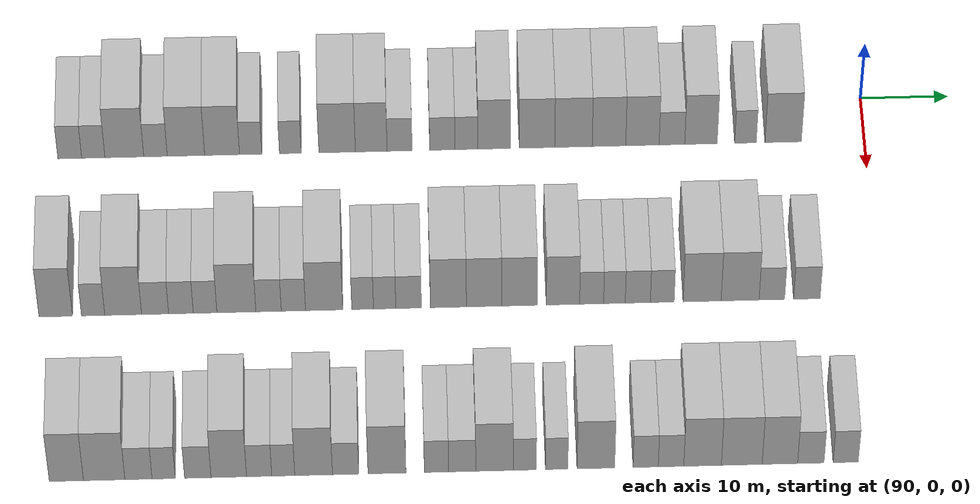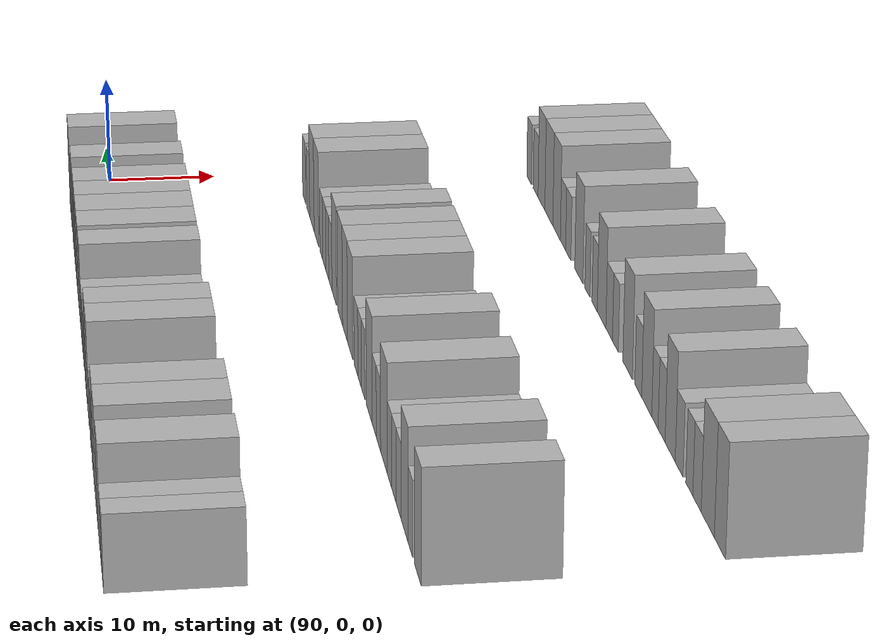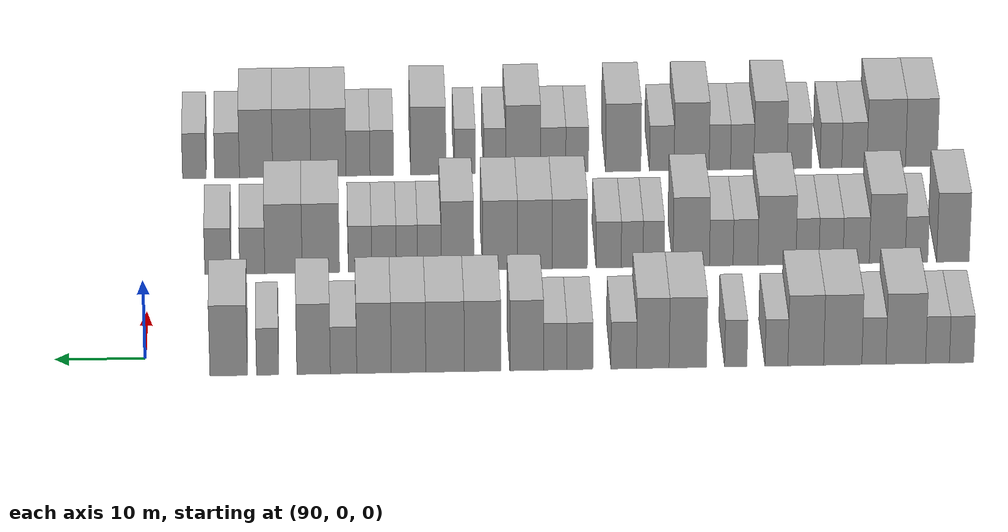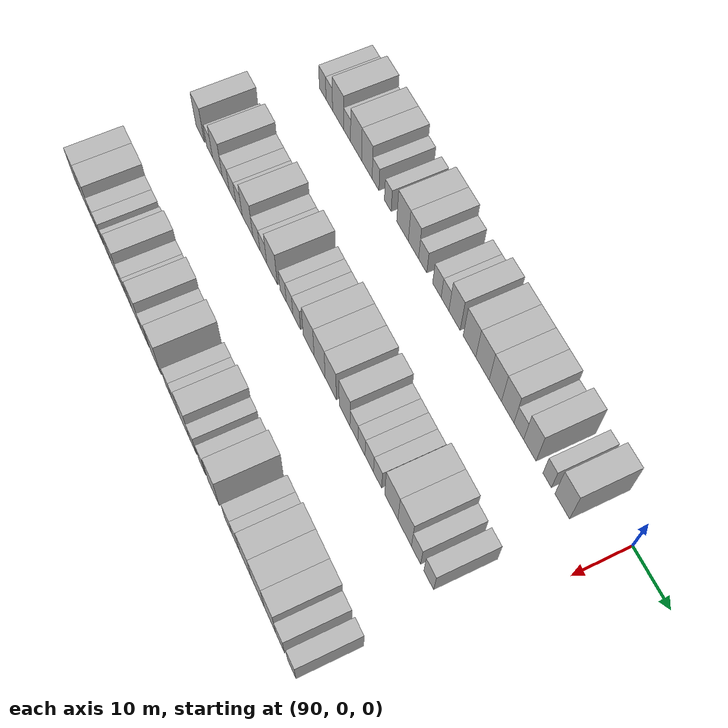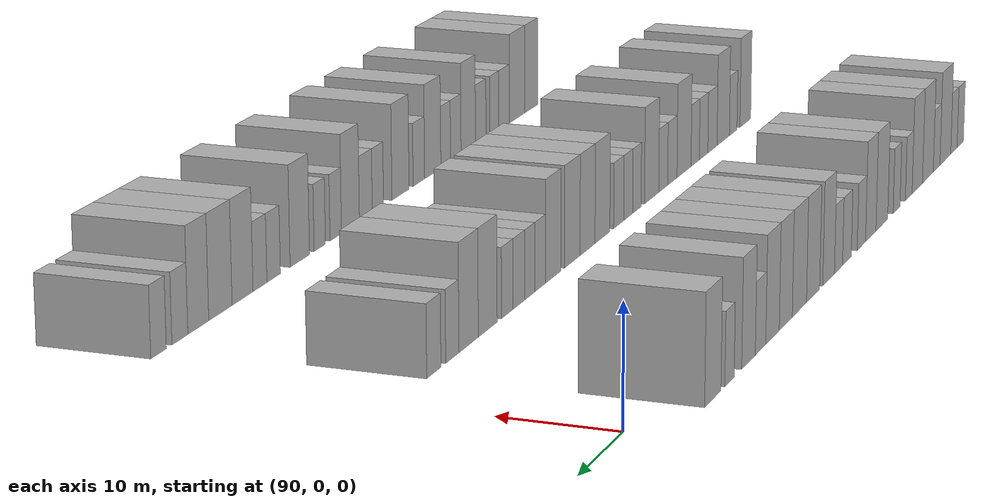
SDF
<sdf version="1.6">
 <world name="default">
  <model name="building_636">
   <static>1</static>
   <pose>91.0000 -90.3232 0 0.000000 0.000000 0.000000</pose>
   <link name="link">
    <pose>0 0 3.00 0 0 0</pose>
    <collision name="collision"><geometry><box><size>10.0000 2.6942 6.0000</size></box></geometry></collision>
    <visual name="visual">
     <cast_shadows>0</cast_shadows>
     <geometry><box><size>10.0000 2.6942 6.0000</size></box></geometry>
     <material>
      <script>
       <uri>model://HANNAS_wall/materials/scripts</uri>
       <uri>model://HANNAS_wall/materials/textures</uri>
       <name>vrc/HANNAS_wall</name>
      </script>
     </material>
    </visual>
   </link>
  </model>
  <model name="building_637">
   <static>1</static>
   <pose>91.0000 -87.6580 0 0.000000 0.000000 0.000000</pose>
   <link name="link">
    <pose>0 0 3.00 0 0 0</pose>
    <collision name="collision"><geometry><box><size>10.0000 2.6362 6.0000</size></box></geometry></collision>
    <visual name="visual">
     <cast_shadows>0</cast_shadows>
     <geometry><box><size>10.0000 2.6362 6.0000</size></box></geometry>
     <material>
      <script>
       <uri>model://HANNAS_wall/materials/scripts</uri>
       <uri>model://HANNAS_wall/materials/textures</uri>
       <name>vrc/HANNAS_wall</name>
      </script>
     </material>
    </visual>
   </link>
  </model>
  <model name="building_638">
   <static>1</static>
   <pose>91.0000 -84.1394 0 0.000000 0.000000 0.000000</pose>
   <link name="link">
    <pose>0 0 4.50 0 0 0</pose>
    <collision name="collision"><geometry><box><size>10.0000 4.4010 9.0000</size></box></geometry></collision>
    <visual name="visual">
     <cast_shadows>0</cast_shadows>
     <geometry><box><size>10.0000 4.4010 9.0000</size></box></geometry>
     <material>
      <script>
       <uri>model://HANNAS_wall/materials/scripts</uri>
       <uri>model://HANNAS_wall/materials/textures</uri>
       <name>vrc/HANNAS_wall</name>
      </script>
     </material>
    </visual>
   </link>
  </model>
  <model name="building_639">
   <static>1</static>
   <pose>91.0000 -80.6016 0 0.000000 0.000000 0.000000</pose>
   <link name="link">
    <pose>0 0 3.00 0 0 0</pose>
    <collision name="collision"><geometry><box><size>10.0000 2.6747 6.0000</size></box></geometry></collision>
    <visual name="visual">
     <cast_shadows>0</cast_shadows>
     <geometry><box><size>10.0000 2.6747 6.0000</size></box></geometry>
     <material>
      <script>
       <uri>model://HANNAS_wall/materials/scripts</uri>
       <uri>model://HANNAS_wall/materials/textures</uri>
       <name>vrc/HANNAS_wall</name>
      </script>
     </material>
    </visual>
   </link>
  </model>
  <model name="building_640">
   <static>1</static>
   <pose>91.0000 -77.1429 0 0.000000 0.000000 0.000000</pose>
   <link name="link">
    <pose>0 0 4.50 0 0 0</pose>
    <collision name="collision"><geometry><box><size>10.0000 4.2426 9.0000</size></box></geometry></collision>
    <visual name="visual">
     <cast_shadows>0</cast_shadows>
     <geometry><box><size>10.0000 4.2426 9.0000</size></box></geometry>
     <material>
      <script>
       <uri>model://HANNAS_wall/materials/scripts</uri>
       <uri>model://HANNAS_wall/materials/textures</uri>
       <name>vrc/HANNAS_wall</name>
      </script>
     </material>
    </visual>
   </link>
  </model>
  <model name="building_641">
   <static>1</static>
   <pose>91.0000 -73.0428 0 0.000000 0.000000 0.000000</pose>
   <link name="link">
    <pose>0 0 4.50 0 0 0</pose>
    <collision name="collision"><geometry><box><size>10.0000 3.9578 9.0000</size></box></geometry></collision>
    <visual name="visual">
     <cast_shadows>0</cast_shadows>
     <geometry><box><size>10.0000 3.9578 9.0000</size></box></geometry>
     <material>
      <script>
       <uri>model://HANNAS_wall/materials/scripts</uri>
       <uri>model://HANNAS_wall/materials/textures</uri>
       <name>vrc/HANNAS_wall</name>
      </script>
     </material>
    </visual>
   </link>
  </model>
  <model name="building_642">
   <static>1</static>
   <pose>91.0000 -69.7947 0 0.000000 0.000000 0.000000</pose>
   <link name="link">
    <pose>0 0 3.00 0 0 0</pose>
    <collision name="collision"><geometry><box><size>10.0000 2.5384 6.0000</size></box></geometry></collision>
    <visual name="visual">
     <cast_shadows>0</cast_shadows>
     <geometry><box><size>10.0000 2.5384 6.0000</size></box></geometry>
     <material>
      <script>
       <uri>model://HANNAS_wall/materials/scripts</uri>
       <uri>model://HANNAS_wall/materials/textures</uri>
       <name>vrc/HANNAS_wall</name>
      </script>
     </material>
    </visual>
   </link>
  </model>
  <model name="building_643">
   <static>1</static>
   <pose>91.0000 -65.2884 0 0.000000 0.000000 0.000000</pose>
   <link name="link">
    <pose>0 0 3.00 0 0 0</pose>
    <collision name="collision"><geometry><box><size>10.0000 2.4742 6.0000</size></box></geometry></collision>
    <visual name="visual">
     <cast_shadows>0</cast_shadows>
     <geometry><box><size>10.0000 2.4742 6.0000</size></box></geometry>
     <material>
      <script>
       <uri>model://HANNAS_wall/materials/scripts</uri>
       <uri>model://HANNAS_wall/materials/textures</uri>
       <name>vrc/HANNAS_wall</name>
      </script>
     </material>
    </visual>
   </link>
  </model>
  <model name="building_644">
   <static>1</static>
   <pose>91.0000 -59.9766 0 0.000000 0.000000 0.000000</pose>
   <link name="link">
    <pose>0 0 4.50 0 0 0</pose>
    <collision name="collision"><geometry><box><size>10.0000 4.1495 9.0000</size></box></geometry></collision>
    <visual name="visual">
     <cast_shadows>0</cast_shadows>
     <geometry><box><size>10.0000 4.1495 9.0000</size></box></geometry>
     <material>
      <script>
       <uri>model://HANNAS_wall/materials/scripts</uri>
       <uri>model://HANNAS_wall/materials/textures</uri>
       <name>vrc/HANNAS_wall</name>
      </script>
     </material>
    </visual>
   </link>
  </model>
  <model name="building_645">
   <static>1</static>
   <pose>91.0000 -56.1002 0 0.000000 0.000000 0.000000</pose>
   <link name="link">
    <pose>0 0 4.50 0 0 0</pose>
    <collision name="collision"><geometry><box><size>10.0000 3.6033 9.0000</size></box></geometry></collision>
    <visual name="visual">
     <cast_shadows>0</cast_shadows>
     <geometry><box><size>10.0000 3.6033 9.0000</size></box></geometry>
     <material>
      <script>
       <uri>model://HANNAS_wall/materials/scripts</uri>
       <uri>model://HANNAS_wall/materials/textures</uri>
       <name>vrc/HANNAS_wall</name>
      </script>
     </material>
    </visual>
   </link>
  </model>
  <model name="building_646">
   <static>1</static>
   <pose>91.0000 -52.8790 0 0.000000 0.000000 0.000000</pose>
   <link name="link">
    <pose>0 0 3.00 0 0 0</pose>
    <collision name="collision"><geometry><box><size>10.0000 2.8392 6.0000</size></box></geometry></collision>
    <visual name="visual">
     <cast_shadows>0</cast_shadows>
     <geometry><box><size>10.0000 2.8392 6.0000</size></box></geometry>
     <material>
      <script>
       <uri>model://HANNAS_wall/materials/scripts</uri>
       <uri>model://HANNAS_wall/materials/textures</uri>
       <name>vrc/HANNAS_wall</name>
      </script>
     </material>
    </visual>
   </link>
  </model>
  <model name="building_647">
   <static>1</static>
   <pose>91.0000 -48.0247 0 0.000000 0.000000 0.000000</pose>
   <link name="link">
    <pose>0 0 3.00 0 0 0</pose>
    <collision name="collision"><geometry><box><size>10.0000 2.8694 6.0000</size></box></geometry></collision>
    <visual name="visual">
     <cast_shadows>0</cast_shadows>
     <geometry><box><size>10.0000 2.8694 6.0000</size></box></geometry>
     <material>
      <script>
       <uri>model://HANNAS_wall/materials/scripts</uri>
       <uri>model://HANNAS_wall/materials/textures</uri>
       <name>vrc/HANNAS_wall</name>
      </script>
     </material>
    </visual>
   </link>
  </model>
  <model name="building_648">
   <static>1</static>
   <pose>91.0000 -45.2902 0 0.000000 0.000000 0.000000</pose>
   <link name="link">
    <pose>0 0 3.00 0 0 0</pose>
    <collision name="collision"><geometry><box><size>10.0000 2.5997 6.0000</size></box></geometry></collision>
    <visual name="visual">
     <cast_shadows>0</cast_shadows>
     <geometry><box><size>10.0000 2.5997 6.0000</size></box></geometry>
     <material>
      <script>
       <uri>model://HANNAS_wall/materials/scripts</uri>
       <uri>model://HANNAS_wall/materials/textures</uri>
       <name>vrc/HANNAS_wall</name>
      </script>
     </material>
    </visual>
   </link>
  </model>
  <model name="building_649">
   <static>1</static>
   <pose>91.0000 -42.1349 0 0.000000 0.000000 0.000000</pose>
   <link name="link">
    <pose>0 0 4.50 0 0 0</pose>
    <collision name="collision"><geometry><box><size>10.0000 3.7110 9.0000</size></box></geometry></collision>
    <visual name="visual">
     <cast_shadows>0</cast_shadows>
     <geometry><box><size>10.0000 3.7110 9.0000</size></box></geometry>
     <material>
      <script>
       <uri>model://HANNAS_wall/materials/scripts</uri>
       <uri>model://HANNAS_wall/materials/textures</uri>
       <name>vrc/HANNAS_wall</name>
      </script>
     </material>
    </visual>
   </link>
  </model>
  <model name="building_650">
   <static>1</static>
   <pose>91.0000 -37.2600 0 0.000000 0.000000 0.000000</pose>
   <link name="link">
    <pose>0 0 4.50 0 0 0</pose>
    <collision name="collision"><geometry><box><size>10.0000 4.0388 9.0000</size></box></geometry></collision>
    <visual name="visual">
     <cast_shadows>0</cast_shadows>
     <geometry><box><size>10.0000 4.0388 9.0000</size></box></geometry>
     <material>
      <script>
       <uri>model://HANNAS_wall/materials/scripts</uri>
       <uri>model://HANNAS_wall/materials/textures</uri>
       <name>vrc/HANNAS_wall</name>
      </script>
     </material>
    </visual>
   </link>
  </model>
  <model name="building_651">
   <static>1</static>
   <pose>91.0000 -33.1135 0 0.000000 0.000000 0.000000</pose>
   <link name="link">
    <pose>0 0 4.50 0 0 0</pose>
    <collision name="collision"><geometry><box><size>10.0000 4.2541 9.0000</size></box></geometry></collision>
    <visual name="visual">
     <cast_shadows>0</cast_shadows>
     <geometry><box><size>10.0000 4.2541 9.0000</size></box></geometry>
     <material>
      <script>
       <uri>model://HANNAS_wall/materials/scripts</uri>
       <uri>model://HANNAS_wall/materials/textures</uri>
       <name>vrc/HANNAS_wall</name>
      </script>
     </material>
    </visual>
   </link>
  </model>
  <model name="building_652">
   <static>1</static>
   <pose>91.0000 -29.0800 0 0.000000 0.000000 0.000000</pose>
   <link name="link">
    <pose>0 0 4.50 0 0 0</pose>
    <collision name="collision"><geometry><box><size>10.0000 3.8130 9.0000</size></box></geometry></collision>
    <visual name="visual">
     <cast_shadows>0</cast_shadows>
     <geometry><box><size>10.0000 3.8130 9.0000</size></box></geometry>
     <material>
      <script>
       <uri>model://HANNAS_wall/materials/scripts</uri>
       <uri>model://HANNAS_wall/materials/textures</uri>
       <name>vrc/HANNAS_wall</name>
      </script>
     </material>
    </visual>
   </link>
  </model>
  <model name="building_653">
   <static>1</static>
   <pose>91.0000 -25.2702 0 0.000000 0.000000 0.000000</pose>
   <link name="link">
    <pose>0 0 4.50 0 0 0</pose>
    <collision name="collision"><geometry><box><size>10.0000 3.8064 9.0000</size></box></geometry></collision>
    <visual name="visual">
     <cast_shadows>0</cast_shadows>
     <geometry><box><size>10.0000 3.8064 9.0000</size></box></geometry>
     <material>
      <script>
       <uri>model://HANNAS_wall/materials/scripts</uri>
       <uri>model://HANNAS_wall/materials/textures</uri>
       <name>vrc/HANNAS_wall</name>
      </script>
     </material>
    </visual>
   </link>
  </model>
  <model name="building_654">
   <static>1</static>
   <pose>91.0000 -21.9108 0 0.000000 0.000000 0.000000</pose>
   <link name="link">
    <pose>0 0 3.00 0 0 0</pose>
    <collision name="collision"><geometry><box><size>10.0000 2.9125 6.0000</size></box></geometry></collision>
    <visual name="visual">
     <cast_shadows>0</cast_shadows>
     <geometry><box><size>10.0000 2.9125 6.0000</size></box></geometry>
     <material>
      <script>
       <uri>model://HANNAS_wall/materials/scripts</uri>
       <uri>model://HANNAS_wall/materials/textures</uri>
       <name>vrc/HANNAS_wall</name>
      </script>
     </material>
    </visual>
   </link>
  </model>
  <model name="building_655">
   <static>1</static>
   <pose>91.0000 -18.6086 0 0.000000 0.000000 0.000000</pose>
   <link name="link">
    <pose>0 0 4.50 0 0 0</pose>
    <collision name="collision"><geometry><box><size>10.0000 3.6917 9.0000</size></box></geometry></collision>
    <visual name="visual">
     <cast_shadows>0</cast_shadows>
     <geometry><box><size>10.0000 3.6917 9.0000</size></box></geometry>
     <material>
      <script>
       <uri>model://HANNAS_wall/materials/scripts</uri>
       <uri>model://HANNAS_wall/materials/textures</uri>
       <name>vrc/HANNAS_wall</name>
      </script>
     </material>
    </visual>
   </link>
  </model>
  <model name="building_656">
   <static>1</static>
   <pose>91.0000 -13.5378 0 0.000000 0.000000 0.000000</pose>
   <link name="link">
    <pose>0 0 3.00 0 0 0</pose>
    <collision name="collision"><geometry><box><size>10.0000 2.4500 6.0000</size></box></geometry></collision>
    <visual name="visual">
     <cast_shadows>0</cast_shadows>
     <geometry><box><size>10.0000 2.4500 6.0000</size></box></geometry>
     <material>
      <script>
       <uri>model://HANNAS_wall/materials/scripts</uri>
       <uri>model://HANNAS_wall/materials/textures</uri>
       <name>vrc/HANNAS_wall</name>
      </script>
     </material>
    </visual>
   </link>
  </model>
  <model name="building_657">
   <static>1</static>
   <pose>91.0000 -9.2428 0 0.000000 0.000000 0.000000</pose>
   <link name="link">
    <pose>0 0 4.50 0 0 0</pose>
    <collision name="collision"><geometry><box><size>10.0000 4.1398 9.0000</size></box></geometry></collision>
    <visual name="visual">
     <cast_shadows>0</cast_shadows>
     <geometry><box><size>10.0000 4.1398 9.0000</size></box></geometry>
     <material>
      <script>
       <uri>model://HANNAS_wall/materials/scripts</uri>
       <uri>model://HANNAS_wall/materials/textures</uri>
       <name>vrc/HANNAS_wall</name>
      </script>
     </material>
    </visual>
   </link>
  </model>
  <model name="building_819">
   <static>1</static>
   <pose>113.0000 -91.4456 0 0.000000 0.000000 0.000000</pose>
   <link name="link">
    <pose>0 0 4.50 0 0 0</pose>
    <collision name="collision"><geometry><box><size>10.0000 3.7139 9.0000</size></box></geometry></collision>
    <visual name="visual">
     <cast_shadows>0</cast_shadows>
     <geometry><box><size>10.0000 3.7139 9.0000</size></box></geometry>
     <material>
      <script>
       <uri>model://HANNAS_wall/materials/scripts</uri>
       <uri>model://HANNAS_wall/materials/textures</uri>
       <name>vrc/HANNAS_wall</name>
      </script>
     </material>
    </visual>
   </link>
  </model>
  <model name="building_820">
   <static>1</static>
   <pose>113.0000 -87.2986 0 0.000000 0.000000 0.000000</pose>
   <link name="link">
    <pose>0 0 3.00 0 0 0</pose>
    <collision name="collision"><geometry><box><size>10.0000 2.5801 6.0000</size></box></geometry></collision>
    <visual name="visual">
     <cast_shadows>0</cast_shadows>
     <geometry><box><size>10.0000 2.5801 6.0000</size></box></geometry>
     <material>
      <script>
       <uri>model://HANNAS_wall/materials/scripts</uri>
       <uri>model://HANNAS_wall/materials/textures</uri>
       <name>vrc/HANNAS_wall</name>
      </script>
     </material>
    </visual>
   </link>
  </model>
  <model name="building_821">
   <static>1</static>
   <pose>113.0000 -83.9642 0 0.000000 0.000000 0.000000</pose>
   <link name="link">
    <pose>0 0 4.50 0 0 0</pose>
    <collision name="collision"><geometry><box><size>10.0000 4.0886 9.0000</size></box></geometry></collision>
    <visual name="visual">
     <cast_shadows>0</cast_shadows>
     <geometry><box><size>10.0000 4.0886 9.0000</size></box></geometry>
     <material>
      <script>
       <uri>model://HANNAS_wall/materials/scripts</uri>
       <uri>model://HANNAS_wall/materials/textures</uri>
       <name>vrc/HANNAS_wall</name>
      </script>
     </material>
    </visual>
   </link>
  </model>
  <model name="building_822">
   <static>1</static>
   <pose>113.0000 -80.4217 0 0.000000 0.000000 0.000000</pose>
   <link name="link">
    <pose>0 0 3.00 0 0 0</pose>
    <collision name="collision"><geometry><box><size>10.0000 2.9965 6.0000</size></box></geometry></collision>
    <visual name="visual">
     <cast_shadows>0</cast_shadows>
     <geometry><box><size>10.0000 2.9965 6.0000</size></box></geometry>
     <material>
      <script>
       <uri>model://HANNAS_wall/materials/scripts</uri>
       <uri>model://HANNAS_wall/materials/textures</uri>
       <name>vrc/HANNAS_wall</name>
      </script>
     </material>
    </visual>
   </link>
  </model>
  <model name="building_823">
   <static>1</static>
   <pose>113.0000 -77.5500 0 0.000000 0.000000 0.000000</pose>
   <link name="link">
    <pose>0 0 3.00 0 0 0</pose>
    <collision name="collision"><geometry><box><size>10.0000 2.7468 6.0000</size></box></geometry></collision>
    <visual name="visual">
     <cast_shadows>0</cast_shadows>
     <geometry><box><size>10.0000 2.7468 6.0000</size></box></geometry>
     <material>
      <script>
       <uri>model://HANNAS_wall/materials/scripts</uri>
       <uri>model://HANNAS_wall/materials/textures</uri>
       <name>vrc/HANNAS_wall</name>
      </script>
     </material>
    </visual>
   </link>
  </model>
  <model name="building_824">
   <static>1</static>
   <pose>113.0000 -74.8670 0 0.000000 0.000000 0.000000</pose>
   <link name="link">
    <pose>0 0 3.00 0 0 0</pose>
    <collision name="collision"><geometry><box><size>10.0000 2.6193 6.0000</size></box></geometry></collision>
    <visual name="visual">
     <cast_shadows>0</cast_shadows>
     <geometry><box><size>10.0000 2.6193 6.0000</size></box></geometry>
     <material>
      <script>
       <uri>model://HANNAS_wall/materials/scripts</uri>
       <uri>model://HANNAS_wall/materials/textures</uri>
       <name>vrc/HANNAS_wall</name>
      </script>
     </material>
    </visual>
   </link>
  </model>
  <model name="building_825">
   <static>1</static>
   <pose>113.0000 -71.3914 0 0.000000 0.000000 0.000000</pose>
   <link name="link">
    <pose>0 0 4.50 0 0 0</pose>
    <collision name="collision"><geometry><box><size>10.0000 4.3317 9.0000</size></box></geometry></collision>
    <visual name="visual">
     <cast_shadows>0</cast_shadows>
     <geometry><box><size>10.0000 4.3317 9.0000</size></box></geometry>
     <material>
      <script>
       <uri>model://HANNAS_wall/materials/scripts</uri>
       <uri>model://HANNAS_wall/materials/textures</uri>
       <name>vrc/HANNAS_wall</name>
      </script>
     </material>
    </visual>
   </link>
  </model>
  <model name="building_826">
   <static>1</static>
   <pose>113.0000 -67.8145 0 0.000000 0.000000 0.000000</pose>
   <link name="link">
    <pose>0 0 3.00 0 0 0</pose>
    <collision name="collision"><geometry><box><size>10.0000 2.8221 6.0000</size></box></geometry></collision>
    <visual name="visual">
     <cast_shadows>0</cast_shadows>
     <geometry><box><size>10.0000 2.8221 6.0000</size></box></geometry>
     <material>
      <script>
       <uri>model://HANNAS_wall/materials/scripts</uri>
       <uri>model://HANNAS_wall/materials/textures</uri>
       <name>vrc/HANNAS_wall</name>
      </script>
     </material>
    </visual>
   </link>
  </model>
  <model name="building_827">
   <static>1</static>
   <pose>113.0000 -65.0588 0 0.000000 0.000000 0.000000</pose>
   <link name="link">
    <pose>0 0 3.00 0 0 0</pose>
    <collision name="collision"><geometry><box><size>10.0000 2.6893 6.0000</size></box></geometry></collision>
    <visual name="visual">
     <cast_shadows>0</cast_shadows>
     <geometry><box><size>10.0000 2.6893 6.0000</size></box></geometry>
     <material>
      <script>
       <uri>model://HANNAS_wall/materials/scripts</uri>
       <uri>model://HANNAS_wall/materials/textures</uri>
       <name>vrc/HANNAS_wall</name>
      </script>
     </material>
    </visual>
   </link>
  </model>
  <model name="building_828">
   <static>1</static>
   <pose>113.0000 -61.6411 0 0.000000 0.000000 0.000000</pose>
   <link name="link">
    <pose>0 0 4.50 0 0 0</pose>
    <collision name="collision"><geometry><box><size>10.0000 4.1462 9.0000</size></box></geometry></collision>
    <visual name="visual">
     <cast_shadows>0</cast_shadows>
     <geometry><box><size>10.0000 4.1462 9.0000</size></box></geometry>
     <material>
      <script>
       <uri>model://HANNAS_wall/materials/scripts</uri>
       <uri>model://HANNAS_wall/materials/textures</uri>
       <name>vrc/HANNAS_wall</name>
      </script>
     </material>
    </visual>
   </link>
  </model>
  <model name="building_829">
   <static>1</static>
   <pose>113.0000 -57.3639 0 0.000000 0.000000 0.000000</pose>
   <link name="link">
    <pose>0 0 3.00 0 0 0</pose>
    <collision name="collision"><geometry><box><size>10.0000 2.4081 6.0000</size></box></geometry></collision>
    <visual name="visual">
     <cast_shadows>0</cast_shadows>
     <geometry><box><size>10.0000 2.4081 6.0000</size></box></geometry>
     <material>
      <script>
       <uri>model://HANNAS_wall/materials/scripts</uri>
       <uri>model://HANNAS_wall/materials/textures</uri>
       <name>vrc/HANNAS_wall</name>
      </script>
     </material>
    </visual>
   </link>
  </model>
  <model name="building_830">
   <static>1</static>
   <pose>113.0000 -54.9186 0 0.000000 0.000000 0.000000</pose>
   <link name="link">
    <pose>0 0 3.00 0 0 0</pose>
    <collision name="collision"><geometry><box><size>10.0000 2.4826 6.0000</size></box></geometry></collision>
    <visual name="visual">
     <cast_shadows>0</cast_shadows>
     <geometry><box><size>10.0000 2.4826 6.0000</size></box></geometry>
     <material>
      <script>
       <uri>model://HANNAS_wall/materials/scripts</uri>
       <uri>model://HANNAS_wall/materials/textures</uri>
       <name>vrc/HANNAS_wall</name>
      </script>
     </material>
    </visual>
   </link>
  </model>
  <model name="building_831">
   <static>1</static>
   <pose>113.0000 -52.2522 0 0.000000 0.000000 0.000000</pose>
   <link name="link">
    <pose>0 0 3.00 0 0 0</pose>
    <collision name="collision"><geometry><box><size>10.0000 2.8501 6.0000</size></box></geometry></collision>
    <visual name="visual">
     <cast_shadows>0</cast_shadows>
     <geometry><box><size>10.0000 2.8501 6.0000</size></box></geometry>
     <material>
      <script>
       <uri>model://HANNAS_wall/materials/scripts</uri>
       <uri>model://HANNAS_wall/materials/textures</uri>
       <name>vrc/HANNAS_wall</name>
      </script>
     </material>
    </visual>
   </link>
  </model>
  <model name="building_832">
   <static>1</static>
   <pose>113.0000 -47.8274 0 0.000000 0.000000 0.000000</pose>
   <link name="link">
    <pose>0 0 4.50 0 0 0</pose>
    <collision name="collision"><geometry><box><size>10.0000 3.9996 9.0000</size></box></geometry></collision>
    <visual name="visual">
     <cast_shadows>0</cast_shadows>
     <geometry><box><size>10.0000 3.9996 9.0000</size></box></geometry>
     <material>
      <script>
       <uri>model://HANNAS_wall/materials/scripts</uri>
       <uri>model://HANNAS_wall/materials/textures</uri>
       <name>vrc/HANNAS_wall</name>
      </script>
     </material>
    </visual>
   </link>
  </model>
  <model name="building_833">
   <static>1</static>
   <pose>113.0000 -43.8624 0 0.000000 0.000000 0.000000</pose>
   <link name="link">
    <pose>0 0 4.50 0 0 0</pose>
    <collision name="collision"><geometry><box><size>10.0000 3.9304 9.0000</size></box></geometry></collision>
    <visual name="visual">
     <cast_shadows>0</cast_shadows>
     <geometry><box><size>10.0000 3.9304 9.0000</size></box></geometry>
     <material>
      <script>
       <uri>model://HANNAS_wall/materials/scripts</uri>
       <uri>model://HANNAS_wall/materials/textures</uri>
       <name>vrc/HANNAS_wall</name>
      </script>
     </material>
    </visual>
   </link>
  </model>
  <model name="building_834">
   <static>1</static>
   <pose>113.0000 -39.9180 0 0.000000 0.000000 0.000000</pose>
   <link name="link">
    <pose>0 0 4.50 0 0 0</pose>
    <collision name="collision"><geometry><box><size>10.0000 3.9584 9.0000</size></box></geometry></collision>
    <visual name="visual">
     <cast_shadows>0</cast_shadows>
     <geometry><box><size>10.0000 3.9584 9.0000</size></box></geometry>
     <material>
      <script>
       <uri>model://HANNAS_wall/materials/scripts</uri>
       <uri>model://HANNAS_wall/materials/textures</uri>
       <name>vrc/HANNAS_wall</name>
      </script>
     </material>
    </visual>
   </link>
  </model>
  <model name="building_835">
   <static>1</static>
   <pose>113.0000 -35.0820 0 0.000000 0.000000 0.000000</pose>
   <link name="link">
    <pose>0 0 4.50 0 0 0</pose>
    <collision name="collision"><geometry><box><size>10.0000 3.7136 9.0000</size></box></geometry></collision>
    <visual name="visual">
     <cast_shadows>0</cast_shadows>
     <geometry><box><size>10.0000 3.7136 9.0000</size></box></geometry>
     <material>
      <script>
       <uri>model://HANNAS_wall/materials/scripts</uri>
       <uri>model://HANNAS_wall/materials/textures</uri>
       <name>vrc/HANNAS_wall</name>
      </script>
     </material>
    </visual>
   </link>
  </model>
  <model name="building_836">
   <static>1</static>
   <pose>113.0000 -31.8905 0 0.000000 0.000000 0.000000</pose>
   <link name="link">
    <pose>0 0 3.00 0 0 0</pose>
    <collision name="collision"><geometry><box><size>10.0000 2.6695 6.0000</size></box></geometry></collision>
    <visual name="visual">
     <cast_shadows>0</cast_shadows>
     <geometry><box><size>10.0000 2.6695 6.0000</size></box></geometry>
     <material>
      <script>
       <uri>model://HANNAS_wall/materials/scripts</uri>
       <uri>model://HANNAS_wall/materials/textures</uri>
       <name>vrc/HANNAS_wall</name>
      </script>
     </material>
    </visual>
   </link>
  </model>
  <model name="building_837">
   <static>1</static>
   <pose>113.0000 -29.3499 0 0.000000 0.000000 0.000000</pose>
   <link name="link">
    <pose>0 0 3.00 0 0 0</pose>
    <collision name="collision"><geometry><box><size>10.0000 2.4117 6.0000</size></box></geometry></collision>
    <visual name="visual">
     <cast_shadows>0</cast_shadows>
     <geometry><box><size>10.0000 2.4117 6.0000</size></box></geometry>
     <material>
      <script>
       <uri>model://HANNAS_wall/materials/scripts</uri>
       <uri>model://HANNAS_wall/materials/textures</uri>
       <name>vrc/HANNAS_wall</name>
      </script>
     </material>
    </visual>
   </link>
  </model>
  <model name="building_838">
   <static>1</static>
   <pose>113.0000 -26.7475 0 0.000000 0.000000 0.000000</pose>
   <link name="link">
    <pose>0 0 3.00 0 0 0</pose>
    <collision name="collision"><geometry><box><size>10.0000 2.7930 6.0000</size></box></geometry></collision>
    <visual name="visual">
     <cast_shadows>0</cast_shadows>
     <geometry><box><size>10.0000 2.7930 6.0000</size></box></geometry>
     <material>
      <script>
       <uri>model://HANNAS_wall/materials/scripts</uri>
       <uri>model://HANNAS_wall/materials/textures</uri>
       <name>vrc/HANNAS_wall</name>
      </script>
     </material>
    </visual>
   </link>
  </model>
  <model name="building_839">
   <static>1</static>
   <pose>113.0000 -24.0265 0 0.000000 0.000000 0.000000</pose>
   <link name="link">
    <pose>0 0 3.00 0 0 0</pose>
    <collision name="collision"><geometry><box><size>10.0000 2.6491 6.0000</size></box></geometry></collision>
    <visual name="visual">
     <cast_shadows>0</cast_shadows>
     <geometry><box><size>10.0000 2.6491 6.0000</size></box></geometry>
     <material>
      <script>
       <uri>model://HANNAS_wall/materials/scripts</uri>
       <uri>model://HANNAS_wall/materials/textures</uri>
       <name>vrc/HANNAS_wall</name>
      </script>
     </material>
    </visual>
   </link>
  </model>
  <model name="building_840">
   <static>1</static>
   <pose>113.0000 -19.5850 0 0.000000 0.000000 0.000000</pose>
   <link name="link">
    <pose>0 0 4.50 0 0 0</pose>
    <collision name="collision"><geometry><box><size>10.0000 4.2338 9.0000</size></box></geometry></collision>
    <visual name="visual">
     <cast_shadows>0</cast_shadows>
     <geometry><box><size>10.0000 4.2338 9.0000</size></box></geometry>
     <material>
      <script>
       <uri>model://HANNAS_wall/materials/scripts</uri>
       <uri>model://HANNAS_wall/materials/textures</uri>
       <name>vrc/HANNAS_wall</name>
      </script>
     </material>
    </visual>
   </link>
  </model>
  <model name="building_841">
   <static>1</static>
   <pose>113.0000 -15.3517 0 0.000000 0.000000 0.000000</pose>
   <link name="link">
    <pose>0 0 4.50 0 0 0</pose>
    <collision name="collision"><geometry><box><size>10.0000 4.2330 9.0000</size></box></geometry></collision>
    <visual name="visual">
     <cast_shadows>0</cast_shadows>
     <geometry><box><size>10.0000 4.2330 9.0000</size></box></geometry>
     <material>
      <script>
       <uri>model://HANNAS_wall/materials/scripts</uri>
       <uri>model://HANNAS_wall/materials/textures</uri>
       <name>vrc/HANNAS_wall</name>
      </script>
     </material>
    </visual>
   </link>
  </model>
  <model name="building_842">
   <static>1</static>
   <pose>113.0000 -11.8133 0 0.000000 0.000000 0.000000</pose>
   <link name="link">
    <pose>0 0 3.00 0 0 0</pose>
    <collision name="collision"><geometry><box><size>10.0000 2.8437 6.0000</size></box></geometry></collision>
    <visual name="visual">
     <cast_shadows>0</cast_shadows>
     <geometry><box><size>10.0000 2.8437 6.0000</size></box></geometry>
     <material>
      <script>
       <uri>model://HANNAS_wall/materials/scripts</uri>
       <uri>model://HANNAS_wall/materials/textures</uri>
       <name>vrc/HANNAS_wall</name>
      </script>
     </material>
    </visual>
   </link>
  </model>
  <model name="building_843">
   <static>1</static>
   <pose>113.0000 -7.9149 0 0.000000 0.000000 0.000000</pose>
   <link name="link">
    <pose>0 0 3.00 0 0 0</pose>
    <collision name="collision"><geometry><box><size>10.0000 2.9532 6.0000</size></box></geometry></collision>
    <visual name="visual">
     <cast_shadows>0</cast_shadows>
     <geometry><box><size>10.0000 2.9532 6.0000</size></box></geometry>
     <material>
      <script>
       <uri>model://HANNAS_wall/materials/scripts</uri>
       <uri>model://HANNAS_wall/materials/textures</uri>
       <name>vrc/HANNAS_wall</name>
      </script>
     </material>
    </visual>
   </link>
  </model>
  <model name="building_1009">
   <static>1</static>
   <pose>135.0000 -89.8224 0 0.000000 0.000000 0.000000</pose>
   <link name="link">
    <pose>0 0 4.50 0 0 0</pose>
    <collision name="collision"><geometry><box><size>10.0000 3.7050 9.0000</size></box></geometry></collision>
    <visual name="visual">
     <cast_shadows>0</cast_shadows>
     <geometry><box><size>10.0000 3.7050 9.0000</size></box></geometry>
     <material>
      <script>
       <uri>model://HANNAS_wall/materials/scripts</uri>
       <uri>model://HANNAS_wall/materials/textures</uri>
       <name>vrc/HANNAS_wall</name>
      </script>
     </material>
    </visual>
   </link>
  </model>
  <model name="building_1010">
   <static>1</static>
   <pose>135.0000 -85.7212 0 0.000000 0.000000 0.000000</pose>
   <link name="link">
    <pose>0 0 4.50 0 0 0</pose>
    <collision name="collision"><geometry><box><size>10.0000 4.4976 9.0000</size></box></geometry></collision>
    <visual name="visual">
     <cast_shadows>0</cast_shadows>
     <geometry><box><size>10.0000 4.4976 9.0000</size></box></geometry>
     <material>
      <script>
       <uri>model://HANNAS_wall/materials/scripts</uri>
       <uri>model://HANNAS_wall/materials/textures</uri>
       <name>vrc/HANNAS_wall</name>
      </script>
     </material>
    </visual>
   </link>
  </model>
  <model name="building_1011">
   <static>1</static>
   <pose>135.0000 -81.9965 0 0.000000 0.000000 0.000000</pose>
   <link name="link">
    <pose>0 0 3.00 0 0 0</pose>
    <collision name="collision"><geometry><box><size>10.0000 2.9518 6.0000</size></box></geometry></collision>
    <visual name="visual">
     <cast_shadows>0</cast_shadows>
     <geometry><box><size>10.0000 2.9518 6.0000</size></box></geometry>
     <material>
      <script>
       <uri>model://HANNAS_wall/materials/scripts</uri>
       <uri>model://HANNAS_wall/materials/textures</uri>
       <name>vrc/HANNAS_wall</name>
      </script>
     </material>
    </visual>
   </link>
  </model>
  <model name="building_1012">
   <static>1</static>
   <pose>135.0000 -79.2548 0 0.000000 0.000000 0.000000</pose>
   <link name="link">
    <pose>0 0 3.00 0 0 0</pose>
    <collision name="collision"><geometry><box><size>10.0000 2.5316 6.0000</size></box></geometry></collision>
    <visual name="visual">
     <cast_shadows>0</cast_shadows>
     <geometry><box><size>10.0000 2.5316 6.0000</size></box></geometry>
     <material>
      <script>
       <uri>model://HANNAS_wall/materials/scripts</uri>
       <uri>model://HANNAS_wall/materials/textures</uri>
       <name>vrc/HANNAS_wall</name>
      </script>
     </material>
    </visual>
   </link>
  </model>
  <model name="building_1013">
   <static>1</static>
   <pose>135.0000 -75.5528 0 0.000000 0.000000 0.000000</pose>
   <link name="link">
    <pose>0 0 3.00 0 0 0</pose>
    <collision name="collision"><geometry><box><size>10.0000 2.8724 6.0000</size></box></geometry></collision>
    <visual name="visual">
     <cast_shadows>0</cast_shadows>
     <geometry><box><size>10.0000 2.8724 6.0000</size></box></geometry>
     <material>
      <script>
       <uri>model://HANNAS_wall/materials/scripts</uri>
       <uri>model://HANNAS_wall/materials/textures</uri>
       <name>vrc/HANNAS_wall</name>
      </script>
     </material>
    </visual>
   </link>
  </model>
  <model name="building_1014">
   <static>1</static>
   <pose>135.0000 -72.1878 0 0.000000 0.000000 0.000000</pose>
   <link name="link">
    <pose>0 0 4.50 0 0 0</pose>
    <collision name="collision"><geometry><box><size>10.0000 3.8575 9.0000</size></box></geometry></collision>
    <visual name="visual">
     <cast_shadows>0</cast_shadows>
     <geometry><box><size>10.0000 3.8575 9.0000</size></box></geometry>
     <material>
      <script>
       <uri>model://HANNAS_wall/materials/scripts</uri>
       <uri>model://HANNAS_wall/materials/textures</uri>
       <name>vrc/HANNAS_wall</name>
      </script>
     </material>
    </visual>
   </link>
  </model>
  <model name="building_1015">
   <static>1</static>
   <pose>135.0000 -68.8920 0 0.000000 0.000000 0.000000</pose>
   <link name="link">
    <pose>0 0 3.00 0 0 0</pose>
    <collision name="collision"><geometry><box><size>10.0000 2.7341 6.0000</size></box></geometry></collision>
    <visual name="visual">
     <cast_shadows>0</cast_shadows>
     <geometry><box><size>10.0000 2.7341 6.0000</size></box></geometry>
     <material>
      <script>
       <uri>model://HANNAS_wall/materials/scripts</uri>
       <uri>model://HANNAS_wall/materials/textures</uri>
       <name>vrc/HANNAS_wall</name>
      </script>
     </material>
    </visual>
   </link>
  </model>
  <model name="building_1016">
   <static>1</static>
   <pose>135.0000 -66.2725 0 0.000000 0.000000 0.000000</pose>
   <link name="link">
    <pose>0 0 3.00 0 0 0</pose>
    <collision name="collision"><geometry><box><size>10.0000 2.5049 6.0000</size></box></geometry></collision>
    <visual name="visual">
     <cast_shadows>0</cast_shadows>
     <geometry><box><size>10.0000 2.5049 6.0000</size></box></geometry>
     <material>
      <script>
       <uri>model://HANNAS_wall/materials/scripts</uri>
       <uri>model://HANNAS_wall/materials/textures</uri>
       <name>vrc/HANNAS_wall</name>
      </script>
     </material>
    </visual>
   </link>
  </model>
  <model name="building_1017">
   <static>1</static>
   <pose>135.0000 -62.9734 0 0.000000 0.000000 0.000000</pose>
   <link name="link">
    <pose>0 0 4.50 0 0 0</pose>
    <collision name="collision"><geometry><box><size>10.0000 4.0935 9.0000</size></box></geometry></collision>
    <visual name="visual">
     <cast_shadows>0</cast_shadows>
     <geometry><box><size>10.0000 4.0935 9.0000</size></box></geometry>
     <material>
      <script>
       <uri>model://HANNAS_wall/materials/scripts</uri>
       <uri>model://HANNAS_wall/materials/textures</uri>
       <name>vrc/HANNAS_wall</name>
      </script>
     </material>
    </visual>
   </link>
  </model>
  <model name="building_1018">
   <static>1</static>
   <pose>135.0000 -59.4919 0 0.000000 0.000000 0.000000</pose>
   <link name="link">
    <pose>0 0 3.00 0 0 0</pose>
    <collision name="collision"><geometry><box><size>10.0000 2.8695 6.0000</size></box></geometry></collision>
    <visual name="visual">
     <cast_shadows>0</cast_shadows>
     <geometry><box><size>10.0000 2.8695 6.0000</size></box></geometry>
     <material>
      <script>
       <uri>model://HANNAS_wall/materials/scripts</uri>
       <uri>model://HANNAS_wall/materials/textures</uri>
       <name>vrc/HANNAS_wall</name>
      </script>
     </material>
    </visual>
   </link>
  </model>
  <model name="building_1019">
   <static>1</static>
   <pose>135.0000 -54.9942 0 0.000000 0.000000 0.000000</pose>
   <link name="link">
    <pose>0 0 4.50 0 0 0</pose>
    <collision name="collision"><geometry><box><size>10.0000 4.1258 9.0000</size></box></geometry></collision>
    <visual name="visual">
     <cast_shadows>0</cast_shadows>
     <geometry><box><size>10.0000 4.1258 9.0000</size></box></geometry>
     <material>
      <script>
       <uri>model://HANNAS_wall/materials/scripts</uri>
       <uri>model://HANNAS_wall/materials/textures</uri>
       <name>vrc/HANNAS_wall</name>
      </script>
     </material>
    </visual>
   </link>
  </model>
  <model name="building_1020">
   <static>1</static>
   <pose>135.0000 -49.6126 0 0.000000 0.000000 0.000000</pose>
   <link name="link">
    <pose>0 0 3.00 0 0 0</pose>
    <collision name="collision"><geometry><box><size>10.0000 2.6374 6.0000</size></box></geometry></collision>
    <visual name="visual">
     <cast_shadows>0</cast_shadows>
     <geometry><box><size>10.0000 2.6374 6.0000</size></box></geometry>
     <material>
      <script>
       <uri>model://HANNAS_wall/materials/scripts</uri>
       <uri>model://HANNAS_wall/materials/textures</uri>
       <name>vrc/HANNAS_wall</name>
      </script>
     </material>
    </visual>
   </link>
  </model>
  <model name="building_1021">
   <static>1</static>
   <pose>135.0000 -46.8150 0 0.000000 0.000000 0.000000</pose>
   <link name="link">
    <pose>0 0 3.00 0 0 0</pose>
    <collision name="collision"><geometry><box><size>10.0000 2.9578 6.0000</size></box></geometry></collision>
    <visual name="visual">
     <cast_shadows>0</cast_shadows>
     <geometry><box><size>10.0000 2.9578 6.0000</size></box></geometry>
     <material>
      <script>
       <uri>model://HANNAS_wall/materials/scripts</uri>
       <uri>model://HANNAS_wall/materials/textures</uri>
       <name>vrc/HANNAS_wall</name>
      </script>
     </material>
    </visual>
   </link>
  </model>
  <model name="building_1022">
   <static>1</static>
   <pose>135.0000 -43.3064 0 0.000000 0.000000 0.000000</pose>
   <link name="link">
    <pose>0 0 4.50 0 0 0</pose>
    <collision name="collision"><geometry><box><size>10.0000 4.0594 9.0000</size></box></geometry></collision>
    <visual name="visual">
     <cast_shadows>0</cast_shadows>
     <geometry><box><size>10.0000 4.0594 9.0000</size></box></geometry>
     <material>
      <script>
       <uri>model://HANNAS_wall/materials/scripts</uri>
       <uri>model://HANNAS_wall/materials/textures</uri>
       <name>vrc/HANNAS_wall</name>
      </script>
     </material>
    </visual>
   </link>
  </model>
  <model name="building_1023">
   <static>1</static>
   <pose>135.0000 -40.0145 0 0.000000 0.000000 0.000000</pose>
   <link name="link">
    <pose>0 0 3.00 0 0 0</pose>
    <collision name="collision"><geometry><box><size>10.0000 2.5245 6.0000</size></box></geometry></collision>
    <visual name="visual">
     <cast_shadows>0</cast_shadows>
     <geometry><box><size>10.0000 2.5245 6.0000</size></box></geometry>
     <material>
      <script>
       <uri>model://HANNAS_wall/materials/scripts</uri>
       <uri>model://HANNAS_wall/materials/textures</uri>
       <name>vrc/HANNAS_wall</name>
      </script>
     </material>
    </visual>
   </link>
  </model>
  <model name="building_1024">
   <static>1</static>
   <pose>135.0000 -36.5344 0 0.000000 0.000000 0.000000</pose>
   <link name="link">
    <pose>0 0 3.00 0 0 0</pose>
    <collision name="collision"><geometry><box><size>10.0000 2.4357 6.0000</size></box></geometry></collision>
    <visual name="visual">
     <cast_shadows>0</cast_shadows>
     <geometry><box><size>10.0000 2.4357 6.0000</size></box></geometry>
     <material>
      <script>
       <uri>model://HANNAS_wall/materials/scripts</uri>
       <uri>model://HANNAS_wall/materials/textures</uri>
       <name>vrc/HANNAS_wall</name>
      </script>
     </material>
    </visual>
   </link>
  </model>
  <model name="building_1025">
   <static>1</static>
   <pose>135.0000 -32.2701 0 0.000000 0.000000 0.000000</pose>
   <link name="link">
    <pose>0 0 4.50 0 0 0</pose>
    <collision name="collision"><geometry><box><size>10.0000 4.0930 9.0000</size></box></geometry></collision>
    <visual name="visual">
     <cast_shadows>0</cast_shadows>
     <geometry><box><size>10.0000 4.0930 9.0000</size></box></geometry>
     <material>
      <script>
       <uri>model://HANNAS_wall/materials/scripts</uri>
       <uri>model://HANNAS_wall/materials/textures</uri>
       <name>vrc/HANNAS_wall</name>
      </script>
     </material>
    </visual>
   </link>
  </model>
  <model name="building_1026">
   <static>1</static>
   <pose>135.0000 -26.8504 0 0.000000 0.000000 0.000000</pose>
   <link name="link">
    <pose>0 0 3.00 0 0 0</pose>
    <collision name="collision"><geometry><box><size>10.0000 2.7464 6.0000</size></box></geometry></collision>
    <visual name="visual">
     <cast_shadows>0</cast_shadows>
     <geometry><box><size>10.0000 2.7464 6.0000</size></box></geometry>
     <material>
      <script>
       <uri>model://HANNAS_wall/materials/scripts</uri>
       <uri>model://HANNAS_wall/materials/textures</uri>
       <name>vrc/HANNAS_wall</name>
      </script>
     </material>
    </visual>
   </link>
  </model>
  <model name="building_1027">
   <static>1</static>
   <pose>135.0000 -24.0867 0 0.000000 0.000000 0.000000</pose>
   <link name="link">
    <pose>0 0 3.00 0 0 0</pose>
    <collision name="collision"><geometry><box><size>10.0000 2.7810 6.0000</size></box></geometry></collision>
    <visual name="visual">
     <cast_shadows>0</cast_shadows>
     <geometry><box><size>10.0000 2.7810 6.0000</size></box></geometry>
     <material>
      <script>
       <uri>model://HANNAS_wall/materials/scripts</uri>
       <uri>model://HANNAS_wall/materials/textures</uri>
       <name>vrc/HANNAS_wall</name>
      </script>
     </material>
    </visual>
   </link>
  </model>
  <model name="building_1028">
   <static>1</static>
   <pose>135.0000 -20.6506 0 0.000000 0.000000 0.000000</pose>
   <link name="link">
    <pose>0 0 4.50 0 0 0</pose>
    <collision name="collision"><geometry><box><size>10.0000 4.0912 9.0000</size></box></geometry></collision>
    <visual name="visual">
     <cast_shadows>0</cast_shadows>
     <geometry><box><size>10.0000 4.0912 9.0000</size></box></geometry>
     <material>
      <script>
       <uri>model://HANNAS_wall/materials/scripts</uri>
       <uri>model://HANNAS_wall/materials/textures</uri>
       <name>vrc/HANNAS_wall</name>
      </script>
     </material>
    </visual>
   </link>
  </model>
  <model name="building_1029">
   <static>1</static>
   <pose>135.0000 -16.3835 0 0.000000 0.000000 0.000000</pose>
   <link name="link">
    <pose>0 0 4.50 0 0 0</pose>
    <collision name="collision"><geometry><box><size>10.0000 4.4431 9.0000</size></box></geometry></collision>
    <visual name="visual">
     <cast_shadows>0</cast_shadows>
     <geometry><box><size>10.0000 4.4431 9.0000</size></box></geometry>
     <material>
      <script>
       <uri>model://HANNAS_wall/materials/scripts</uri>
       <uri>model://HANNAS_wall/materials/textures</uri>
       <name>vrc/HANNAS_wall</name>
      </script>
     </material>
    </visual>
   </link>
  </model>
  <model name="building_1030">
   <static>1</static>
   <pose>135.0000 -12.2293 0 0.000000 0.000000 0.000000</pose>
   <link name="link">
    <pose>0 0 4.50 0 0 0</pose>
    <collision name="collision"><geometry><box><size>10.0000 3.8653 9.0000</size></box></geometry></collision>
    <visual name="visual">
     <cast_shadows>0</cast_shadows>
     <geometry><box><size>10.0000 3.8653 9.0000</size></box></geometry>
     <material>
      <script>
       <uri>model://HANNAS_wall/materials/scripts</uri>
       <uri>model://HANNAS_wall/materials/textures</uri>
       <name>vrc/HANNAS_wall</name>
      </script>
     </material>
    </visual>
   </link>
  </model>
  <model name="building_1031">
   <static>1</static>
   <pose>135.0000 -8.8556 0 0.000000 0.000000 0.000000</pose>
   <link name="link">
    <pose>0 0 3.00 0 0 0</pose>
    <collision name="collision"><geometry><box><size>10.0000 2.8822 6.0000</size></box></geometry></collision>
    <visual name="visual">
     <cast_shadows>0</cast_shadows>
     <geometry><box><size>10.0000 2.8822 6.0000</size></box></geometry>
     <material>
      <script>
       <uri>model://HANNAS_wall/materials/scripts</uri>
       <uri>model://HANNAS_wall/materials/textures</uri>
       <name>vrc/HANNAS_wall</name>
      </script>
     </material>
    </visual>
   </link>
  </model>
  <model name="building_1032">
   <static>1</static>
   <pose>135.0000 -5.0476 0 0.000000 0.000000 0.000000</pose>
   <link name="link">
    <pose>0 0 3.00 0 0 0</pose>
    <collision name="collision"><geometry><box><size>10.0000 2.7339 6.0000</size></box></geometry></collision>
    <visual name="visual">
     <cast_shadows>0</cast_shadows>
     <geometry><box><size>10.0000 2.7339 6.0000</size></box></geometry>
     <material>
      <script>
       <uri>model://HANNAS_wall/materials/scripts</uri>
       <uri>model://HANNAS_wall/materials/textures</uri>
       <name>vrc/HANNAS_wall</name>
      </script>
     </material>
    </visual>
   </link>
  </model>
 </world>
</sdf>
